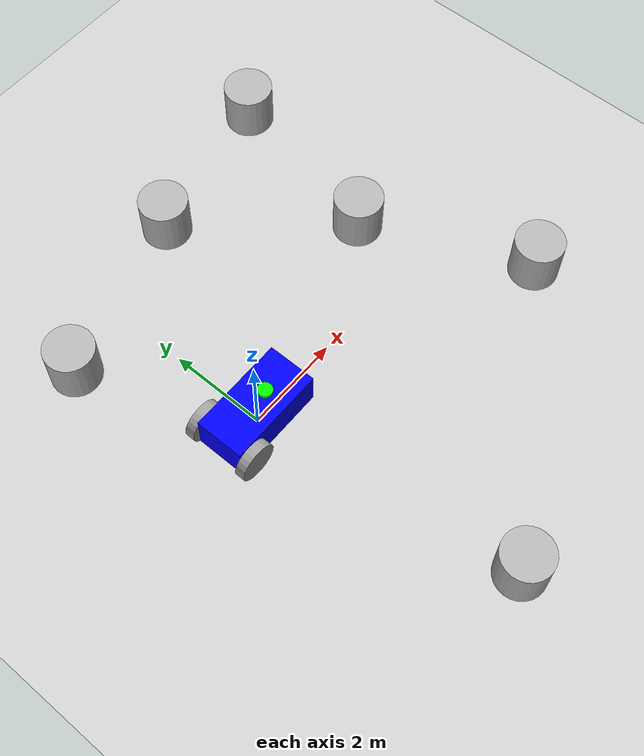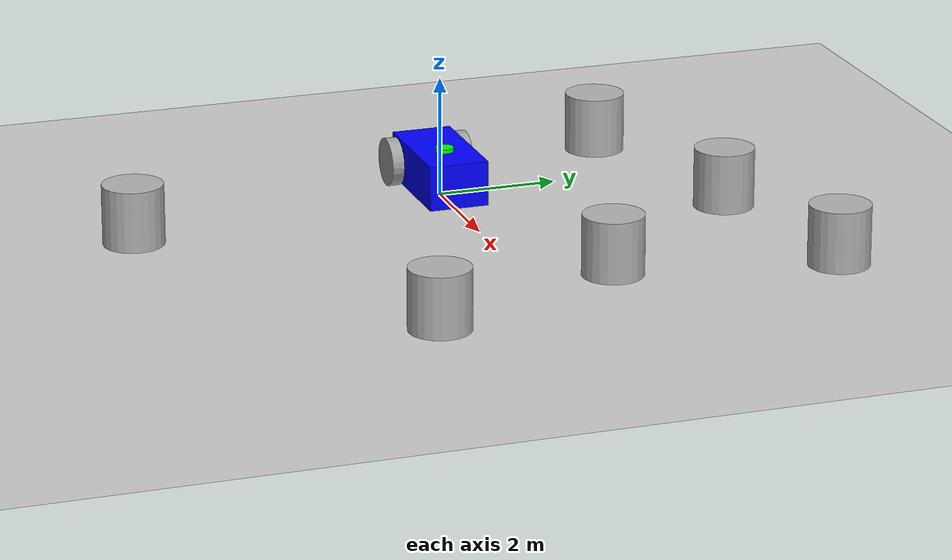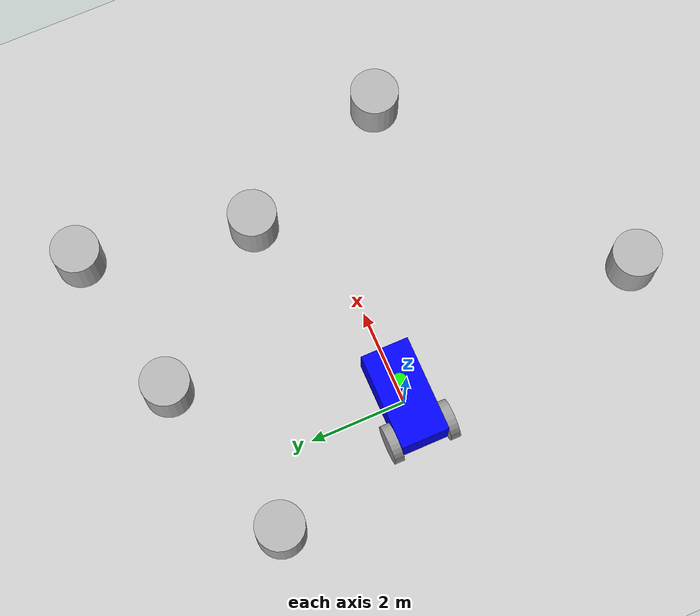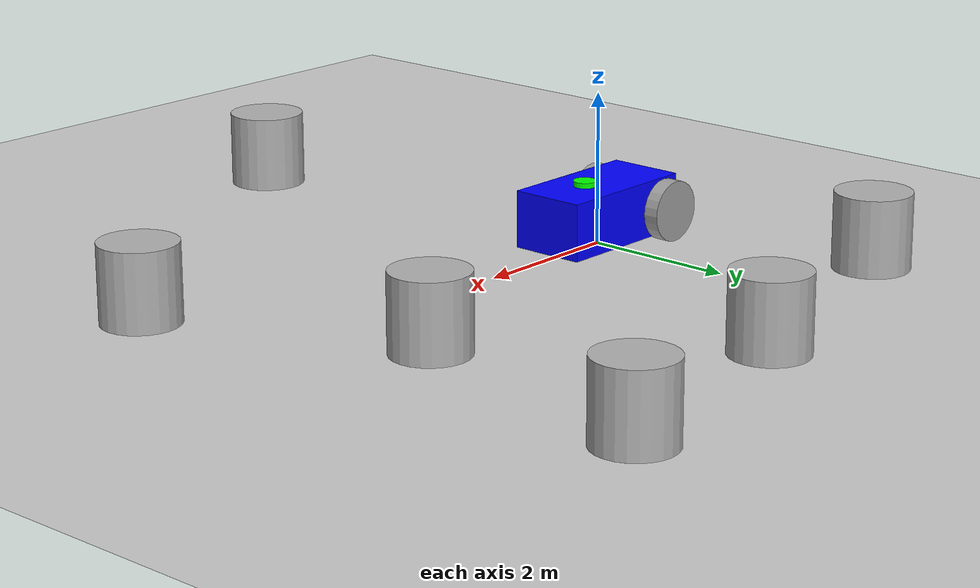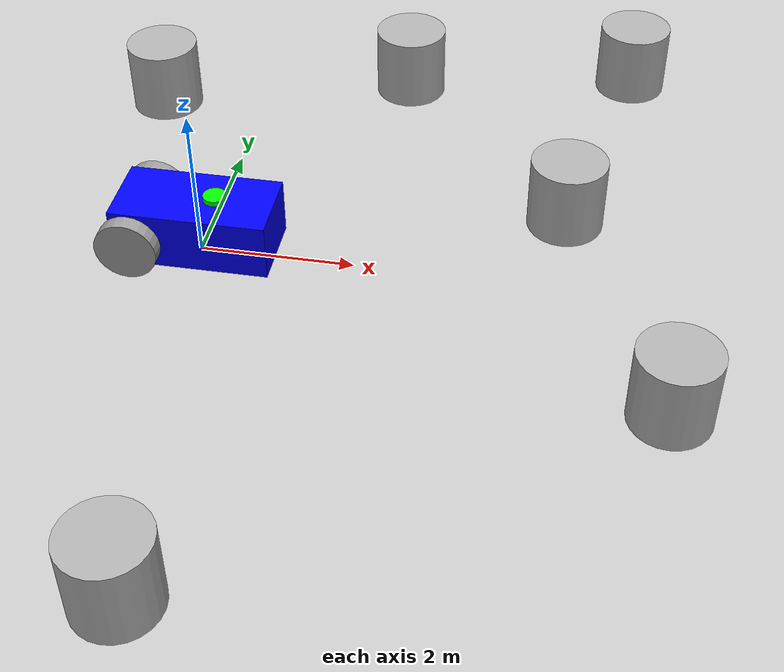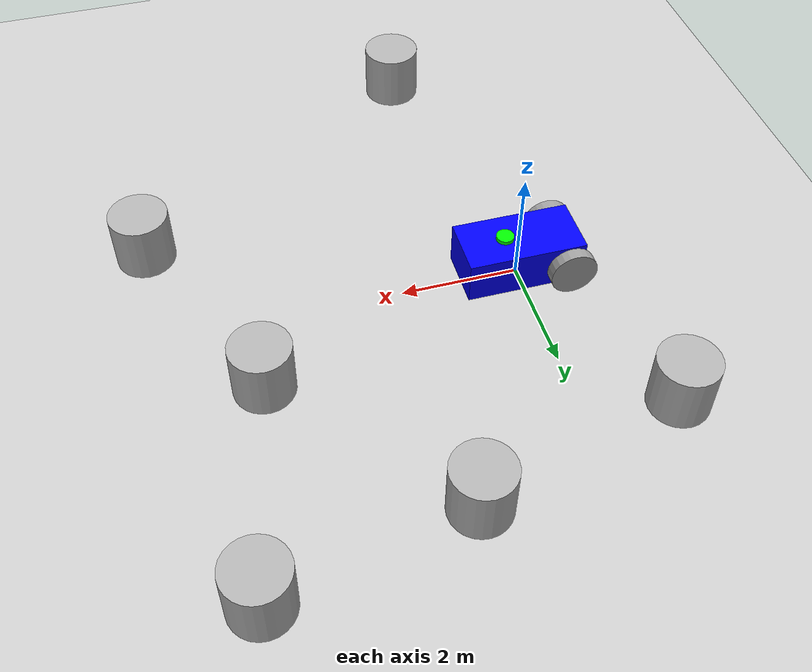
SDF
<sdf version='1.10'>
  <world name='car_world'>
    <physics name='1ms' type='ignored'>
      <max_step_size>0.001</max_step_size>
      <real_time_factor>1</real_time_factor>
      <real_time_update_rate>1000</real_time_update_rate>
    </physics>
    <plugin name='gz::sim::systems::Physics' filename='gz-sim-physics-system'/>
    <plugin name='gz::sim::systems::UserCommands' filename='gz-sim-user-commands-system'/>
    <plugin name='gz::sim::systems::SceneBroadcaster' filename='gz-sim-scene-broadcaster-system'/>
    <plugin name='gz::sim::systems::Sensors' filename='gz-sim-sensors-system'>
      <render_engine>ogre2</render_engine>
    </plugin>
    <plugin name='gz::sim::systems::Imu' filename='gz-sim-imu-system'/>
    <plugin name='gz::sim::systems::TriggeredPublisher' filename='gz-sim-triggered-publisher-system'>
      <input type='gz.msgs.Int32' topic='/keyboard/keypress'>
        <match field='data'>16777234</match>
      </input>
      <output type='gz.msgs.Twist' topic='/cmd_vel'>linear: {x: 0.0}, angular: {z: 0.5}</output>
    </plugin>
    <plugin name='gz::sim::systems::TriggeredPublisher' filename='gz-sim-triggered-publisher-system'>
      <input type='gz.msgs.Int32' topic='/keyboard/keypress'>
        <match field='data'>16777235</match>
      </input>
      <output type='gz.msgs.Twist' topic='/cmd_vel'>linear: {x: 0.5}, angular: {z: 0.0}</output>
    </plugin>
    <plugin name='gz::sim::systems::TriggeredPublisher' filename='gz-sim-triggered-publisher-system'>
      <input type='gz.msgs.Int32' topic='/keyboard/keypress'>
        <match field='data'>16777236</match>
      </input>
      <output type='gz.msgs.Twist' topic='/cmd_vel'>linear: {x: 0.0}, angular: {z: -0.5}</output>
    </plugin>
    <plugin name='gz::sim::systems::TriggeredPublisher' filename='gz-sim-triggered-publisher-system'>
      <input type='gz.msgs.Int32' topic='/keyboard/keypress'>
        <match field='data'>16777237</match>
      </input>
      <output type='gz.msgs.Twist' topic='/cmd_vel'>linear: {x: -0.5}, angular: {z: 0.0}</output>
    </plugin>
    <gravity>0 0 -9.8000000000000007</gravity>
    <magnetic_field>5.5644999999999998e-06 2.2875799999999999e-05 -4.2388400000000002e-05</magnetic_field>
    <atmosphere type='adiabatic'/>
    <scene>
      <ambient>0.400000006 0.400000006 0.400000006 1</ambient>
      <background>0.699999988 0.699999988 0.699999988 1</background>
      <shadows>true</shadows>
    </scene>
    <include>
      <uri>
      https://fuel.gazebosim.org/1.0/OpenRobotics/models/Ground Plane
      </uri>
    </include>
    <model name='sam_bot'>
      <link name='base_link'>
        <inertial>
          <pose>0.020097270790626631 0 0.032959524096627682 0 0 0</pose>
          <mass>1.2439499999999999</mass>
          <inertia>
            <ixx>7.690787659512039</ixx>
            <ixy>0</ixy>
            <ixz>-0.0094260118975843105</ixz>
            <iyy>7.9825232277422726</iyy>
            <iyz>0</iyz>
            <izz>0.48251856823023442</izz>
          </inertia>
        </inertial>
        <collision name='base_link_collision'>
          <pose>0 0 0 0 0 0</pose>
          <geometry>
            <box>
              <size>2 1 0.75</size>
            </box>
          </geometry>
          <surface>
            <contact>
              <ode/>
            </contact>
            <friction>
              <ode/>
            </friction>
            <bounce/>
          </surface>
        </collision>
        <collision name='base_link_fixed_joint_lump__lidar_link_collision_1'>
          <pose>0.25 0 0.40999999999999998 0 0 0</pose>
          <geometry>
            <cylinder>
              <length>0.070000000000000007</length>
              <radius>0.14999999999999999</radius>
            </cylinder>
          </geometry>
          <surface>
            <contact>
              <ode/>
            </contact>
            <friction>
              <ode/>
            </friction>
            <bounce/>
          </surface>
        </collision>
        <visual name='base_link_visual'>
          <pose>0 0 0 0 0 0</pose>
          <geometry>
            <box>
              <size>2 1 0.75</size>
            </box>
          </geometry>
          <material>
            <diffuse>0 0 1 1</diffuse>
            <ambient>0 0 1 1</ambient>
          </material>
        </visual>
        <visual name='base_link_fixed_joint_lump__lidar_link_visual_1'>
          <pose>0.25 0 0.40999999999999998 0 0 0</pose>
          <geometry>
            <cylinder>
              <length>0.070000000000000007</length>
              <radius>0.14999999999999999</radius>
            </cylinder>
          </geometry>
          <material>
            <diffuse>0 1 0 1</diffuse>
            <ambient>0 1 0 1</ambient>
          </material>
        </visual>
        <sensor name='imu_sensor' type='imu'>
          <pose>0 0 0 0 0 0</pose>
          <topic>base_imu</topic>
          <update_rate>100</update_rate>
          <enable_metrics>true</enable_metrics>
          <visualize>true</visualize>
          <imu>
            <orientation_reference_frame>
              <localization>CUSTOM</localization>
              <custom_rpy>0 0 0</custom_rpy>
              <grav_dir_x>1 0 0</grav_dir_x>
            </orientation_reference_frame>
            <angular_velocity>
              <x>
                <noise type='gaussian'>
                  <mean>0</mean>
                  <stddev>0.00020000000000000001</stddev>
                  <bias_mean>7.5000000000000002e-06</bias_mean>
                  <bias_stddev>7.9999999999999996e-07</bias_stddev>
                  <dynamic_bias_stddev>0</dynamic_bias_stddev>
                  <dynamic_bias_correlation_time>0</dynamic_bias_correlation_time>
                  <precision>0</precision>
                </noise>
              </x>
              <y>
                <noise type='gaussian'>
                  <mean>0</mean>
                  <stddev>0.00020000000000000001</stddev>
                  <bias_mean>7.5000000000000002e-06</bias_mean>
                  <bias_stddev>7.9999999999999996e-07</bias_stddev>
                  <dynamic_bias_stddev>0</dynamic_bias_stddev>
                  <dynamic_bias_correlation_time>0</dynamic_bias_correlation_time>
                  <precision>0</precision>
                </noise>
              </y>
              <z>
                <noise type='gaussian'>
                  <mean>0</mean>
                  <stddev>0.00020000000000000001</stddev>
                  <bias_mean>7.5000000000000002e-06</bias_mean>
                  <bias_stddev>7.9999999999999996e-07</bias_stddev>
                  <dynamic_bias_stddev>0</dynamic_bias_stddev>
                  <dynamic_bias_correlation_time>0</dynamic_bias_correlation_time>
                  <precision>0</precision>
                </noise>
              </z>
            </angular_velocity>
            <linear_acceleration>
              <x>
                <noise type='gaussian'>
                  <mean>0</mean>
                  <stddev>0.017000000000000001</stddev>
                  <bias_mean>0.10000000000000001</bias_mean>
                  <bias_stddev>0.001</bias_stddev>
                  <dynamic_bias_stddev>0</dynamic_bias_stddev>
                  <dynamic_bias_correlation_time>0</dynamic_bias_correlation_time>
                  <precision>0</precision>
                </noise>
              </x>
              <y>
                <noise type='gaussian'>
                  <mean>0</mean>
                  <stddev>0.017000000000000001</stddev>
                  <bias_mean>0.10000000000000001</bias_mean>
                  <bias_stddev>0.001</bias_stddev>
                  <dynamic_bias_stddev>0</dynamic_bias_stddev>
                  <dynamic_bias_correlation_time>0</dynamic_bias_correlation_time>
                  <precision>0</precision>
                </noise>
              </y>
              <z>
                <noise type='gaussian'>
                  <mean>0</mean>
                  <stddev>0.017000000000000001</stddev>
                  <bias_mean>0.10000000000000001</bias_mean>
                  <bias_stddev>0.001</bias_stddev>
                  <dynamic_bias_stddev>0</dynamic_bias_stddev>
                  <dynamic_bias_correlation_time>0</dynamic_bias_correlation_time>
                  <precision>0</precision>
                </noise>
              </z>
            </linear_acceleration>
            <enable_orientation>true</enable_orientation>
          </imu>
        </sensor>
        <sensor name='lidar' type='gpu_lidar'>
          <pose>0.25 0 0.40999999999999998 0 0 0</pose>
          <topic>base_lidar</topic>
          <update_rate>30</update_rate>
          <enable_metrics>false</enable_metrics>
          <lidar>
            <scan>
              <horizontal>
                <samples>640</samples>
                <resolution>1</resolution>
                <min_angle>-2.6179963000000002</min_angle>
                <max_angle>2.6179963000000002</max_angle>
              </horizontal>
              <vertical>
                <samples>16</samples>
                <min_angle>-0.261799</min_angle>
                <max_angle>0.261799</max_angle>
                <resolution>1</resolution>
              </vertical>
            </scan>
            <range>
              <min>0.12</min>
              <max>3.5</max>
              <resolution>0.014999999999999999</resolution>
            </range>
            <noise>
              <type>gaussian</type>
              <mean>0</mean>
              <stddev>0.01</stddev>
            </noise>
            <visibility_mask>4294967295</visibility_mask>
          </lidar>
        </sensor>
        <pose>0 0 0 0 0 0</pose>
        <enable_wind>false</enable_wind>
      </link>
      <joint name='caster_joint' type='revolute'>
        <pose>0 0 0 0 0 0</pose>
        <parent>base_link</parent>
        <child>front_caster</child>
        <axis>
          <xyz>1 0 0</xyz>
          <limit>
            <lower>-inf</lower>
            <upper>inf</upper>
            <effort>inf</effort>
            <velocity>inf</velocity>
            <stiffness>100000000</stiffness>
            <dissipation>1</dissipation>
          </limit>
          <dynamics>
            <spring_reference>0</spring_reference>
            <spring_stiffness>0</spring_stiffness>
            <damping>0</damping>
            <friction>0</friction>
          </dynamics>
        </axis>
      </joint>
      <link name='front_caster'>
        <pose>0.65400000000000003 0 -0.375 0 0 0</pose>
        <inertial>
          <pose>0 0 0 0 0 0</pose>
          <mass>1</mass>
          <inertia>
            <ixx>0.016</ixx>
            <ixy>0</ixy>
            <ixz>0</ixz>
            <iyy>0.016</iyy>
            <iyz>0</iyz>
            <izz>0.016</izz>
          </inertia>
        </inertial>
        <collision name='front_caster_collision'>
          <pose>0 0 0 0 0 0</pose>
          <geometry>
            <sphere>
              <radius>0.075000000000000011</radius>
            </sphere>
          </geometry>
          <surface>
            <friction>
              <ode/>
            </friction>
            <bounce/>
            <contact/>
          </surface>
        </collision>
        <visual name='front_caster_visual'>
          <pose>0 0 0 0 0 0</pose>
          <geometry>
            <sphere>
              <radius>0.075000000000000011</radius>
            </sphere>
          </geometry>
          <material>
            <diffuse>1 0 0 1</diffuse>
            <ambient>1 0 0 1</ambient>
          </material>
        </visual>
        <enable_wind>false</enable_wind>
      </link>
      <joint name='drivewhl_l_joint' type='revolute'>
        <pose>0 0 0 0 0 0</pose>
        <parent>base_link</parent>
        <child>drivewhl_l_link</child>
        <axis>
          <xyz>0 1 0</xyz>
          <limit>
            <lower>-inf</lower>
            <upper>inf</upper>
            <effort>inf</effort>
            <velocity>inf</velocity>
            <stiffness>100000000</stiffness>
            <dissipation>1</dissipation>
          </limit>
          <dynamics>
            <spring_reference>0</spring_reference>
            <spring_stiffness>0</spring_stiffness>
            <damping>0</damping>
            <friction>0</friction>
          </dynamics>
        </axis>
      </joint>
      <link name='drivewhl_l_link'>
        <pose>-0.75 0.59999999999999998 -0.049999999999999989 0 0 0</pose>
        <inertial>
          <pose>0 0 0 0 0 0</pose>
          <mass>1</mass>
          <inertia>
            <ixx>0.043333000000000003</ixx>
            <ixy>0</ixy>
            <ixz>0</ixz>
            <iyy>0.043333000000000003</iyy>
            <iyz>0</iyz>
            <izz>0.080000000000000002</izz>
          </inertia>
        </inertial>
        <collision name='drivewhl_l_link_fixed_joint_lump__collision_collision'>
          <pose>0 0 0 1.5707963267948959 0 0</pose>
          <geometry>
            <cylinder>
              <length>0.20000000000000001</length>
              <radius>0.40000000000000002</radius>
            </cylinder>
          </geometry>
          <surface>
            <friction>
              <ode/>
            </friction>
            <bounce/>
            <contact/>
          </surface>
        </collision>
        <visual name='drivewhl_l_link_visual'>
          <pose>0 0 0 1.5707963267948959 0 0</pose>
          <geometry>
            <cylinder>
              <length>0.20000000000000001</length>
              <radius>0.40000000000000002</radius>
            </cylinder>
          </geometry>
          <material>
            <diffuse>0.625 0.625 0.625 1</diffuse>
            <ambient>0.625 0.625 0.625 1</ambient>
          </material>
        </visual>
        <enable_wind>false</enable_wind>
      </link>
      <joint name='drivewhl_r_joint' type='revolute'>
        <pose>0 0 0 0 0 0</pose>
        <parent>base_link</parent>
        <child>drivewhl_r_link</child>
        <axis>
          <xyz>0 1 0</xyz>
          <limit>
            <lower>-inf</lower>
            <upper>inf</upper>
            <effort>inf</effort>
            <velocity>inf</velocity>
            <stiffness>100000000</stiffness>
            <dissipation>1</dissipation>
          </limit>
          <dynamics>
            <spring_reference>0</spring_reference>
            <spring_stiffness>0</spring_stiffness>
            <damping>0</damping>
            <friction>0</friction>
          </dynamics>
        </axis>
      </joint>
      <link name='drivewhl_r_link'>
        <pose>-0.75 -0.59999999999999998 -0.049999999999999989 0 0 0</pose>
        <inertial>
          <pose>0 0 0 0 0 0</pose>
          <mass>1</mass>
          <inertia>
            <ixx>0.043333000000000003</ixx>
            <ixy>0</ixy>
            <ixz>0</ixz>
            <iyy>0.043333000000000003</iyy>
            <iyz>0</iyz>
            <izz>0.080000000000000002</izz>
          </inertia>
        </inertial>
        <collision name='drivewhl_r_link_fixed_joint_lump__collision_collision'>
          <pose>0 0 0 1.5707963267948959 0 0</pose>
          <geometry>
            <cylinder>
              <length>0.20000000000000001</length>
              <radius>0.40000000000000002</radius>
            </cylinder>
          </geometry>
          <surface>
            <friction>
              <ode/>
            </friction>
            <bounce/>
            <contact/>
          </surface>
        </collision>
        <visual name='drivewhl_r_link_visual'>
          <pose>0 0 0 1.5707963267948959 0 0</pose>
          <geometry>
            <cylinder>
              <length>0.20000000000000001</length>
              <radius>0.40000000000000002</radius>
            </cylinder>
          </geometry>
          <material>
            <diffuse>0.625 0.625 0.625 1</diffuse>
            <ambient>0.625 0.625 0.625 1</ambient>
          </material>
        </visual>
        <enable_wind>false</enable_wind>
      </link>
      <pose>0 0 0.45000000000000001 0 0 0</pose>
      <plugin name='gz::sim::systems::DiffDrive' filename='gz-sim-diff-drive-system'>
        <left_joint>drivewhl_l_joint</left_joint>
        <right_joint>drivewhl_r_joint</right_joint>
        <wheel_separation>1.2</wheel_separation>
        <wheel_radius>0.4</wheel_radius>
        <tf_topic>/diff_drive/tf</tf_topic>
        <topic>cmd_vel</topic>
        <odom_publish_frequency>30</odom_publish_frequency>
        <frame_id>odom</frame_id>
        <child_frame_id>base_link</child_frame_id>
      </plugin>
      <frame name='base_joint' attached_to='base_link'>
        <pose>0 0 -0.45000000000000001 0 0 0</pose>
      </frame>
      <frame name='base_footprint' attached_to='base_joint'>
        <pose>0 0 0 0 0 0</pose>
      </frame>
      <frame name='lidar_joint' attached_to='base_link'>
        <pose>0.25 0 0.40999999999999998 0 0 0</pose>
      </frame>
      <frame name='lidar_link' attached_to='lidar_joint'>
        <pose>0 0 0 0 0 0</pose>
      </frame>
      <static>false</static>
      <self_collide>false</self_collide>
    </model>
    <model name='cylinder'>
      <pose>4.5723122143268089 1.3301026188932135 0.49999999631413172 -1.0885859147007946e-17 -3.8078934486479766e-17 9.6893384273000313e-19</pose>
      <link name='cylinder_link'>
        <inertial>
          <inertia>
            <ixx>0.14580000000000001</ixx>
            <ixy>0</ixy>
            <ixz>0</ixz>
            <iyy>0.14580000000000001</iyy>
            <iyz>0</iyz>
            <izz>0.125</izz>
          </inertia>
          <mass>1</mass>
          <pose>0 0 0 0 0 0</pose>
        </inertial>
        <collision name='cylinder_collision'>
          <geometry>
            <cylinder>
              <radius>0.5</radius>
              <length>1</length>
            </cylinder>
          </geometry>
          <surface>
            <friction>
              <ode/>
            </friction>
            <bounce/>
            <contact/>
          </surface>
        </collision>
        <visual name='cylinder_visual'>
          <geometry>
            <cylinder>
              <radius>0.5</radius>
              <length>1</length>
            </cylinder>
          </geometry>
          <material>
            <ambient>0.300000012 0.300000012 0.300000012 1</ambient>
            <diffuse>0.699999988 0.699999988 0.699999988 1</diffuse>
            <specular>1 1 1 1</specular>
          </material>
        </visual>
        <pose>0 0 0 0 0 0</pose>
        <enable_wind>false</enable_wind>
      </link>
      <static>false</static>
      <self_collide>false</self_collide>
    </model>
    <model name='cylinder_0'>
      <pose>-1.459016471739587 3.2579329081134261 0.49999999631413172 8.5460569882317396e-18 -6.238983927492342e-18 -8.9316784853412828e-19</pose>
      <link name='cylinder_link'>
        <inertial>
          <inertia>
            <ixx>0.14580000000000001</ixx>
            <ixy>0</ixy>
            <ixz>0</ixz>
            <iyy>0.14580000000000001</iyy>
            <iyz>0</iyz>
            <izz>0.125</izz>
          </inertia>
          <mass>1</mass>
          <pose>0 0 0 0 0 0</pose>
        </inertial>
        <collision name='cylinder_collision'>
          <geometry>
            <cylinder>
              <radius>0.5</radius>
              <length>1</length>
            </cylinder>
          </geometry>
          <surface>
            <friction>
              <ode/>
            </friction>
            <bounce/>
            <contact/>
          </surface>
        </collision>
        <visual name='cylinder_visual'>
          <geometry>
            <cylinder>
              <radius>0.5</radius>
              <length>1</length>
            </cylinder>
          </geometry>
          <material>
            <ambient>0.300000012 0.300000012 0.300000012 1</ambient>
            <diffuse>0.699999988 0.699999988 0.699999988 1</diffuse>
            <specular>1 1 1 1</specular>
          </material>
        </visual>
        <pose>0 0 0 0 0 0</pose>
        <enable_wind>false</enable_wind>
      </link>
      <static>false</static>
      <self_collide>false</self_collide>
    </model>
    <model name='cylinder_1'>
      <pose>2.037931314455709 4.2211400960125349 0.5 0 0 0</pose>
      <link name='cylinder_link'>
        <inertial>
          <inertia>
            <ixx>0.14580000000000001</ixx>
            <ixy>0</ixy>
            <ixz>0</ixz>
            <iyy>0.14580000000000001</iyy>
            <iyz>0</iyz>
            <izz>0.125</izz>
          </inertia>
          <mass>1</mass>
          <pose>0 0 0 0 0 0</pose>
        </inertial>
        <collision name='cylinder_collision'>
          <geometry>
            <cylinder>
              <radius>0.5</radius>
              <length>1</length>
            </cylinder>
          </geometry>
          <surface>
            <friction>
              <ode/>
            </friction>
            <bounce/>
            <contact/>
          </surface>
        </collision>
        <visual name='cylinder_visual'>
          <geometry>
            <cylinder>
              <radius>0.5</radius>
              <length>1</length>
            </cylinder>
          </geometry>
          <material>
            <ambient>0.300000012 0.300000012 0.300000012 1</ambient>
            <diffuse>0.699999988 0.699999988 0.699999988 1</diffuse>
            <specular>1 1 1 1</specular>
          </material>
        </visual>
        <pose>0 0 0 0 0 0</pose>
        <enable_wind>false</enable_wind>
      </link>
      <static>false</static>
      <self_collide>false</self_collide>
    </model>
    <model name='cylinder_4'>
      <pose>5.276351264008051 4.8597276143791728 0.5 0 0 0</pose>
      <link name='cylinder_link'>
        <inertial>
          <inertia>
            <ixx>0.14580000000000001</ixx>
            <ixy>0</ixy>
            <ixz>0</ixz>
            <iyy>0.14580000000000001</iyy>
            <iyz>0</iyz>
            <izz>0.125</izz>
          </inertia>
          <mass>1</mass>
          <pose>0 0 0 0 0 0</pose>
        </inertial>
        <collision name='cylinder_collision'>
          <geometry>
            <cylinder>
              <radius>0.5</radius>
              <length>1</length>
            </cylinder>
          </geometry>
          <surface>
            <friction>
              <ode/>
            </friction>
            <bounce/>
            <contact/>
          </surface>
        </collision>
        <visual name='cylinder_visual'>
          <geometry>
            <cylinder>
              <radius>0.5</radius>
              <length>1</length>
            </cylinder>
          </geometry>
          <material>
            <ambient>0.300000012 0.300000012 0.300000012 1</ambient>
            <diffuse>0.699999988 0.699999988 0.699999988 1</diffuse>
            <specular>1 1 1 1</specular>
          </material>
        </visual>
        <pose>0 0 0 0 0 0</pose>
        <enable_wind>false</enable_wind>
      </link>
      <static>false</static>
      <self_collide>false</self_collide>
    </model>
    <model name='cylinder_6'>
      <pose>6.005584864553585 -1.9891844637127059 0.5 0 0 0</pose>
      <link name='cylinder_link'>
        <inertial>
          <inertia>
            <ixx>0.14580000000000001</ixx>
            <ixy>0</ixy>
            <ixz>0</ixz>
            <iyy>0.14580000000000001</iyy>
            <iyz>0</iyz>
            <izz>0.125</izz>
          </inertia>
          <mass>1</mass>
          <pose>0 0 0 0 0 0</pose>
        </inertial>
        <collision name='cylinder_collision'>
          <geometry>
            <cylinder>
              <radius>0.5</radius>
              <length>1</length>
            </cylinder>
          </geometry>
          <surface>
            <friction>
              <ode/>
            </friction>
            <bounce/>
            <contact/>
          </surface>
        </collision>
        <visual name='cylinder_visual'>
          <geometry>
            <cylinder>
              <radius>0.5</radius>
              <length>1</length>
            </cylinder>
          </geometry>
          <material>
            <ambient>0.300000012 0.300000012 0.300000012 1</ambient>
            <diffuse>0.699999988 0.699999988 0.699999988 1</diffuse>
            <specular>1 1 1 1</specular>
          </material>
        </visual>
        <pose>0 0 0 0 0 0</pose>
        <enable_wind>false</enable_wind>
      </link>
      <static>false</static>
      <self_collide>false</self_collide>
    </model>
    <model name='cylinder_7'>
      <pose>0.72543870782264541 -5.3885426042941047 0.5 0 0 0</pose>
      <link name='cylinder_link'>
        <inertial>
          <inertia>
            <ixx>0.14580000000000001</ixx>
            <ixy>0</ixy>
            <ixz>0</ixz>
            <iyy>0.14580000000000001</iyy>
            <iyz>0</iyz>
            <izz>0.125</izz>
          </inertia>
          <mass>1</mass>
          <pose>0 0 0 0 0 0</pose>
        </inertial>
        <collision name='cylinder_collision'>
          <geometry>
            <cylinder>
              <radius>0.5</radius>
              <length>1</length>
            </cylinder>
          </geometry>
          <surface>
            <friction>
              <ode/>
            </friction>
            <bounce/>
            <contact/>
          </surface>
        </collision>
        <visual name='cylinder_visual'>
          <geometry>
            <cylinder>
              <radius>0.5</radius>
              <length>1</length>
            </cylinder>
          </geometry>
          <material>
            <ambient>0.300000012 0.300000012 0.300000012 1</ambient>
            <diffuse>0.699999988 0.699999988 0.699999988 1</diffuse>
            <specular>1 1 1 1</specular>
          </material>
        </visual>
        <pose>0 0 0 0 0 0</pose>
        <enable_wind>false</enable_wind>
      </link>
      <static>false</static>
      <self_collide>false</self_collide>
    </model>
    <light name='sun' type='directional'>
      <pose>0 0 10 0 0 0</pose>
      <cast_shadows>true</cast_shadows>
      <intensity>1</intensity>
      <direction>-0.5 0.10000000000000001 -0.90000000000000002</direction>
      <diffuse>0.800000012 0.800000012 0.800000012 1</diffuse>
      <specular>0.200000003 0.200000003 0.200000003 1</specular>
      <attenuation>
        <range>1000</range>
        <linear>0.0099999997764825821</linear>
        <constant>0.89999997615814209</constant>
        <quadratic>0.0010000000474974513</quadratic>
      </attenuation>
      <spot>
        <inner_angle>0</inner_angle>
        <outer_angle>0</outer_angle>
        <falloff>0</falloff>
      </spot>
    </light>
  </world>
</sdf>
